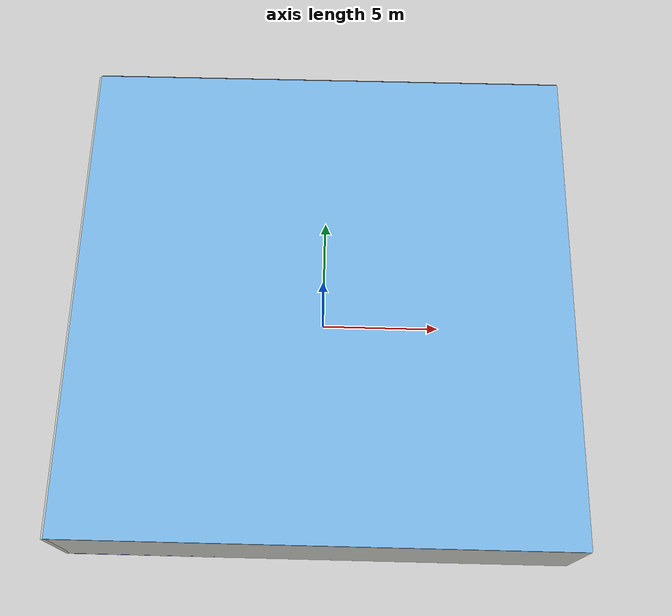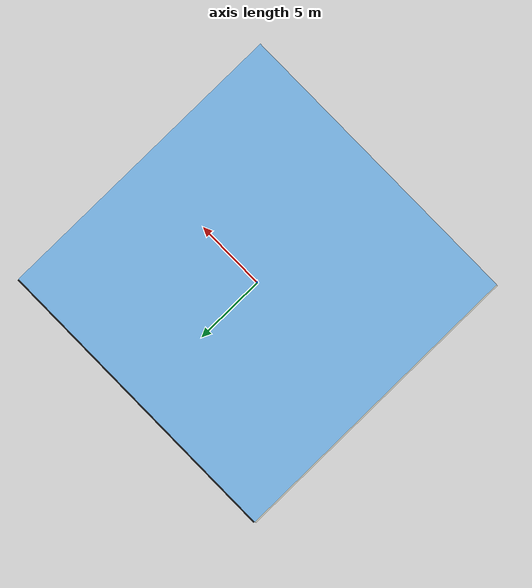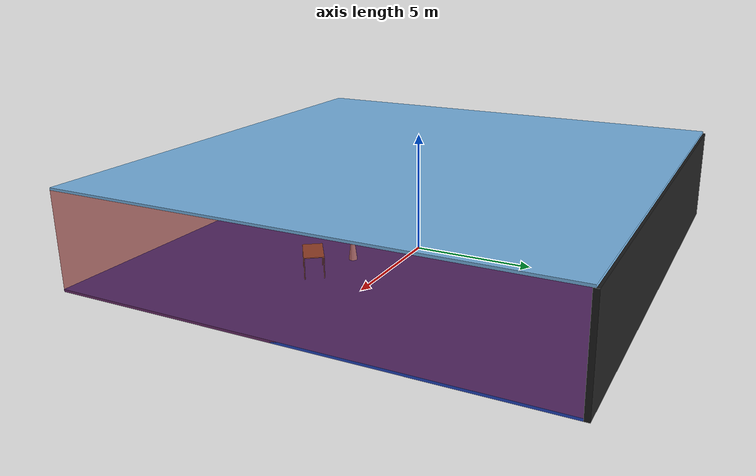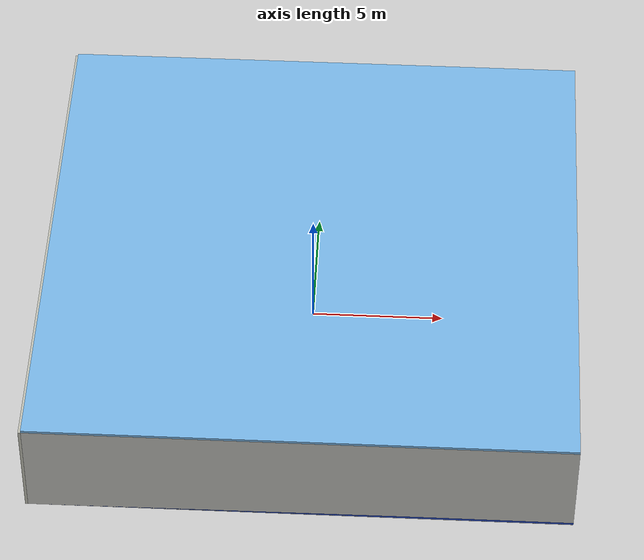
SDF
<sdf version="1.4">
 <world name="default">
  <physics type="ode">
   <max_step_size>0.001</max_step_size>
   <real_time_factor>1</real_time_factor>
   <real_time_update_rate>1000</real_time_update_rate>
   <gravity>0 0 -9.8</gravity>
  </physics>
  <scene><ambient>0.4 0.4 0.4 1</ambient><background>0.7 0.7 0.7 1</background><shadows>1</shadows></scene>
  <model name="Surrounding">
   <static>1</static>
   <link name="Ceiling">
    <collision name="Ceiling_Collision"><geometry><box><size>20 20 0.1</size></box></geometry></collision>
    <visual name="Ceiling_Visual">
     <geometry><box><size>20 20 0.1</size></box></geometry>
     <material>
      <script><uri>file://media/materials/scripts/gazebo.material</uri><name>Gazebo/SkyBlue</name></script>
     </material>
    </visual>
    <pose>0 0 4.05 0 0 0</pose>
   </link>
   <link name="Wall_South">
    <collision name="Wall_South_Collision">
     <geometry><box><size>20 0 4</size></box></geometry>
     <pose>0 0 2 0 -0 0</pose>
    </collision>
    <visual name="Wall_South_Visual">
     <pose>0 0 2 0 -0 0</pose>
     <geometry><box><size>20 0 4</size></box></geometry>
     <material>
      <script><uri>file://media/materials/scripts/gazebo.material</uri><name>Gazebo/CeilingTiled</name></script>
     </material>
    </visual>
    <velocity_decay><linear>0</linear><angular>0</angular></velocity_decay>
    <pose>0 -10 0 0 -0 0</pose>
   </link>
   <link name="Wall_East">
    <collision name="Wall_21_Collision">
     <geometry><box><size>20 0 4</size></box></geometry>
     <pose>0 0 2 0 -0 0</pose>
    </collision>
    <visual name="Wall_21_Visual">
     <pose>0 0 2 0 -0 0</pose>
     <geometry><box><size>20 0 4</size></box></geometry>
     <material>
      <script><uri>file://media/materials/scripts/gazebo.material</uri><name>Gazebo/RedTransparent</name></script>
     </material>
    </visual>
    <velocity_decay><linear>0</linear><angular>0</angular></velocity_decay>
    <pose>10 0 0 0 -0 1.5708</pose>
   </link>
   <link name="Wall_North">
    <collision name="Wall_22_Collision">
     <geometry><box><size>20 0.2 4</size></box></geometry>
     <pose>0 0 2 0 -0 0</pose>
    </collision>
    <visual name="Wall_22_Visual">
     <pose>0 0 2 0 -0 0</pose>
     <geometry><box><size>20 0.2 4</size></box></geometry>
     <material>
      <script><uri>file://media/materials/scripts/gazebo.material</uri><name>Gazebo/Black</name></script>
     </material>
    </visual>
    <velocity_decay><linear>0</linear><angular>0</angular></velocity_decay>
    <pose>0 10 0 0 -0 0</pose>
   </link>
   <link name="Wall_West">
    <collision name="Wall_23_Collision">
     <geometry><box><size>20 0.2 4</size></box></geometry>
     <pose>0 0 2 0 -0 0</pose>
    </collision>
    <visual name="Wall_23_Visual">
     <pose>0 0 2 0 -0 0</pose>
     <geometry><box><size>20 0.2 4</size></box></geometry>
     <material>
      <script><uri>file://media/materials/scripts/gazebo.material</uri><name>Gazebo/PaintedWall</name></script>
     </material>
    </visual>
    <velocity_decay><linear>0</linear><angular>0</angular></velocity_decay>
    <pose>-10 0 0 0 0 -1.5708</pose>
   </link>
   <link name="Ground_link">
    <collision name="collision">
     <pose>0 0 .05 0 -0 0</pose>
     <geometry><box><size>20 20 0.1</size></box></geometry>
    </collision>
    <visual name="visual">
     <pose>0 0 .05 0 -0 0</pose>
     <geometry><box><size>20 20 0.1</size></box></geometry>
     <material>
      <script><uri>file://media/materials/scripts/gazebo.material</uri><name>Gazebo/Blue</name></script>
     </material>
    </visual>
   </link>
   <static>1</static>
  </model>
  <spherical_coordinates>
   <surface_model>EARTH_WGS84</surface_model>
   <latitude_deg>0</latitude_deg>
   <longitude_deg>0</longitude_deg>
   <elevation>0</elevation>
   <heading_deg>0</heading_deg>
  </spherical_coordinates>
  <light name="lightball_0" type="diffuse">
   <diffuse>0.8 0.8 0.8 1</diffuse>
   <specular>0.2 0.2 0.2 1</specular>
   <attenuation>
    <range>100</range>
    <constant>0.7</constant>
    <linear>0.01</linear>
    <quadratic>0.001</quadratic>
   </attenuation>
   <direction>-0.5 0.1 -0.9</direction>
   <pose>-3.74419947266 -8.90151250304 2.24585482152 0 0 0</pose>
  </light>
  <include>
   <uri>model://robocup_3Dsim_goal</uri>
   <pose>-4.20291229325 -6.93231359996 0 0 0 2.99379164017</pose>
  </include>
  <include>
   <uri>model://construction_cone</uri>
   <pose>-5.51289587624 -5.3625239728 0 0 0 1.26291610711</pose>
  </include>
  <include><uri>model://table</uri><pose>-0.905882484133 8.58637507611 0 0 0 1.57254811719</pose></include>
  <include>
   <uri>model://construction_cone</uri>
   <pose>2.56388458658 -1.77823598657 0 0 0 0.821741550588</pose>
  </include>
  <include><uri>model://table</uri><pose>4.45657896773 -2.46061007018 0 0 0 0.62163921192</pose></include>
 </world>
</sdf>

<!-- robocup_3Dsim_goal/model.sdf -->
<sdf version="1.5">
  <model name="robocup_3d_goal">
    <static>true</static>
    <link name="left_post">
      <pose>0 1.05 0.45 0 0 0</pose>
      <collision name="collision">
        <geometry>
          <cylinder>
            <radius>0.05</radius>
            <length>0.9</length>
          </cylinder>
        </geometry>
      </collision>
      <visual name="visual">
        <geometry>
          <cylinder>
            <radius>0.05</radius>
            <length>0.9</length>
          </cylinder>
        </geometry>
        <material>
          <script>
            <uri>file://media/materials/scripts/gazebo.material</uri>
            <name>Gazebo/ZincYellow</name>
          </script>
        </material>
      </visual>
    </link>
    <link name="left_support_horiz_lower">
      <pose>0.30 1.05 0.01 0 0 0</pose>
      <collision name="collision">
        <geometry>
          <box>
            <size>0.50 0.02 0.02</size>
          </box>
        </geometry>
      </collision>
      <visual name="visual">
        <geometry>
          <box>
            <size>0.50 0.02 0.02</size>
          </box>
        </geometry>
        <material>
          <script>
            <uri>file://media/materials/scripts/gazebo.material</uri>
            <name>Gazebo/White</name>
          </script>
        </material>
      </visual>
    </link>
    <link name="left_support_horiz_upper">
      <pose>0.30 1.05 0.79 0 0 0</pose>
      <collision name="collision">
        <geometry>
          <box>
            <size>0.50 0.02 0.02</size>
          </box>
        </geometry>
      </collision>
      <visual name="visual">
        <geometry>
          <box>
            <size>0.50 0.02 0.02</size>
          </box>
        </geometry>
        <material>
          <script>
            <uri>file://media/materials/scripts/gazebo.material</uri>
            <name>Gazebo/White</name>
          </script>
        </material>
      </visual>
    </link>
    <link name="left_support_vertical">
      <pose>0.56 1.05 0.4 0 1.5708 0</pose>
      <collision name="collision">
        <geometry>
          <box>
            <size>0.80 0.02 0.02</size>
          </box>
        </geometry>
      </collision>
      <visual name="visual">
        <geometry>
          <box>
            <size>0.80 0.02 0.02</size>
          </box>
        </geometry>
        <material>
          <script>
            <uri>file://media/materials/scripts/gazebo.material</uri>
            <name>Gazebo/White</name>
          </script>
        </material>
      </visual>
    </link>
    <link name="right_support_horiz_lower">
      <pose>0.30 -1.05 0.01 0 0 0</pose>
      <collision name="collision">
        <geometry>
          <box>
            <size>0.50 0.02 0.02</size>
          </box>
        </geometry>
      </collision>
      <visual name="visual">
        <geometry>
          <box>
            <size>0.50 0.02 0.02</size>
          </box>
        </geometry>
        <material>
          <script>
            <uri>file://media/materials/scripts/gazebo.material</uri>
            <name>Gazebo/White</name>
          </script>
        </material>
      </visual>
    </link>
    <link name="right_support_horiz_upper">
      <pose>0.30 -1.05 0.79 0 0 0</pose>
      <collision name="collision">
        <geometry>
          <box>
            <size>0.50 0.02 0.02</size>
          </box>
        </geometry>
      </collision>
      <visual name="visual">
        <geometry>
          <box>
            <size>0.50 0.02 0.02</size>
          </box>
        </geometry>
        <material>
          <script>
            <uri>file://media/materials/scripts/gazebo.material</uri>
            <name>Gazebo/White</name>
          </script>
        </material>
      </visual>
    </link>
    <link name="right_support_vertical">
      <pose>0.56 -1.05 0.4 0 1.5708 0</pose>
      <collision name="collision">
        <geometry>
          <box>
            <size>0.80 0.02 0.02</size>
          </box>
        </geometry>
      </collision>
      <visual name="visual">
        <geometry>
          <box>
            <size>0.80 0.02 0.02</size>
          </box>
        </geometry>
        <material>
          <script>
            <uri>file://media/materials/scripts/gazebo.material</uri>
            <name>Gazebo/White</name>
          </script>
        </material>
      </visual>
    </link>
    <link name="center_support_horiz_lower">
      <pose>0.56 0 0.01 0 1.5708 0</pose>
      <collision name="collision">
        <geometry>
          <box>
            <size>0.02 2.08 0.02</size>
          </box>
        </geometry>
      </collision>
      <visual name="visual">
        <geometry>
          <box>
            <size>0.02 2.08 0.02</size>
          </box>
        </geometry>
        <material>
          <script>
            <uri>file://media/materials/scripts/gazebo.material</uri>
            <name>Gazebo/White</name>
          </script>
        </material>
      </visual>
    </link>
    <link name="center_support_horiz_upper">
      <pose>0.56 0 0.79 0 1.5708 0</pose>
      <collision name="collision">
        <geometry>
          <box>
            <size>0.02 2.08 0.02</size>
          </box>
        </geometry>
      </collision>
      <visual name="visual">
        <geometry>
          <box>
            <size>0.02 2.08 0.02</size>
          </box>
        </geometry>
        <material>
          <script>
            <uri>file://media/materials/scripts/gazebo.material</uri>
            <name>Gazebo/White</name>
          </script>
        </material>
      </visual>
    </link>
    <link name="right_post">
      <pose>0 -1.05 0.45 0 0 0</pose>
      <collision name="collision">
        <geometry>
          <cylinder>
            <radius>0.05</radius>
            <length>0.9</length>
          </cylinder>
        </geometry>
      </collision>
      <visual name="visual">
        <geometry>
          <cylinder>
            <radius>0.05</radius>
            <length>0.9</length>
          </cylinder>
        </geometry>
        <material>
          <script>
            <uri>file://media/materials/scripts/gazebo.material</uri>
            <name>Gazebo/ZincYellow</name>
          </script>
        </material>
      </visual>
    </link>
    <link name="crossbar">
      <pose>0 0 0.85 1.57 1.57 0</pose>
      <collision name="collision">
        <geometry>
          <cylinder>
            <radius>0.05</radius>
            <length>2.0</length>
          </cylinder>
        </geometry>
      </collision>
      <visual name="visual">
        <geometry>
          <cylinder>
            <radius>0.05</radius>
            <length>2.0</length>
          </cylinder>
        </geometry>
        <material>
          <script>
            <uri>file://media/materials/scripts/gazebo.material</uri>
            <name>Gazebo/ZincYellow</name>
          </script>
        </material>
      </visual>
    </link>
    <link name="center_net">
      <pose>0.56 0 0.40 0 0 0</pose>
      <collision name="collision">
        <geometry>
          <box>
            <size>0.01 2.1 0.80</size>
          </box>
        </geometry>
      </collision>
      <visual name="visual">
        <geometry>
          <box>
            <size>0.01 2.1 0.80</size>
          </box>
        </geometry>
        <material>
          <script>
            <uri>model://../model_source/models/robocup09_spl_field/materials/scripts/</uri>
            <uri>model://../model_source/models/robocup09_spl_field/materials/textures/</uri>
            <name>RoboCup/Net</name>
          </script>
        </material>
      </visual>
    </link>
    <link name="left_net">
      <pose>0.30 1.05 0.40 0 0 0</pose>
      <collision name="collision">
        <geometry>
          <box>
            <size>0.50 0.01 0.76</size>
          </box>
        </geometry>
      </collision>
      <visual name="visual">
        <geometry>
          <box>
            <size>0.50 0.01 0.76</size>
          </box>
        </geometry>
        <material>
          <script>
            <uri>model://../model_source/models/robocup09_spl_field/materials/scripts/</uri>
            <uri>model://../model_source/models/robocup09_spl_field/materials/textures/</uri>
            <name>RoboCup/Net</name>
          </script>
        </material>
      </visual>
    </link>
    <link name="right_net">
      <pose>0.30 -1.05 0.40 0 0 0</pose>
      <collision name="collision">
        <geometry>
          <box>
            <size>0.50 0.01 0.76</size>
          </box>
        </geometry>
      </collision>
      <visual name="visual">
        <geometry>
          <box>
            <size>0.50 0.01 0.76</size>
          </box>
        </geometry>
        <material>
          <script>
            <uri>model://../model_source/models/robocup09_spl_field/materials/scripts/</uri>
            <uri>model://../model_source/models/robocup09_spl_field/materials/textures/</uri>
            <name>RoboCup/Net</name>
          </script>
        </material>
      </visual>
    </link>
  </model>
</sdf>

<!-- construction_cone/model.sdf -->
<sdf version="1.5">
  <model name="Construction Cone">
    <link name="link">
      <collision name="collision">
        <geometry>
          <mesh>
            <scale>10 10 10</scale>
            <uri>file://isr-testbed/construction_cone/meshes/construction_cone.dae</uri>
          </mesh>
        </geometry>
      </collision>
      <visual name="visual">
        <geometry>
          <mesh>
            <scale>10 10 10</scale>
            <uri>file://isr-testbed/construction_cone/meshes/construction_cone.dae</uri>
          </mesh>
        </geometry>
      </visual>
    </link>
  </model>
</sdf>

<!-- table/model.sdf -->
<sdf version="1.5">
  <model name="table">
    <static>true</static>
    <link name="link">
      <collision name="surface">
        <pose>0 0 1.0 0 0 0</pose>
        <geometry>
          <box>
            <size>1.5 0.8 0.03</size>
          </box>
        </geometry>
        <surface>
          <friction>
            <ode>
              <mu>0.6</mu>
              <mu2>0.6</mu2>
            </ode>
          </friction>
        </surface>
      </collision>
      <visual name="visual1">
        <pose>0 0 1.0 0 0 0</pose>
        <geometry>
          <box>
            <size>1.5 0.8 0.03</size>
          </box>
        </geometry>
        <material>
          <script>
            <uri>model://media/materials/scripts/gazebo.material</uri>
            <name>Gazebo/Wood</name>
          </script>
        </material>
      </visual>
      <collision name="front_left_leg">
        <pose>0.68 0.38 0.5 0 0 0</pose>
        <geometry>
          <cylinder>
            <radius>0.02</radius>
            <length>1.0</length>
          </cylinder>
        </geometry>
      </collision>
      <visual name="front_left_leg">
        <pose>0.68 0.38 0.5 0 0 0</pose>
        <geometry>
          <cylinder>
            <radius>0.02</radius>
            <length>1.0</length>
          </cylinder>
        </geometry>
        <material>
          <script>
            <uri>model://media/materials/scripts/gazebo.material</uri>
            <name>Gazebo/Grey</name>
          </script>
        </material>
      </visual>
      <collision name="front_right_leg">
        <pose>0.68 -0.38 0.5 0 0 0</pose>
        <geometry>
          <cylinder>
            <radius>0.02</radius>
            <length>1.0</length>
          </cylinder>
        </geometry>
      </collision>
      <visual name="front_right_leg">
        <pose>0.68 -0.38 0.5 0 0 0</pose>
        <geometry>
          <cylinder>
            <radius>0.02</radius>
            <length>1.0</length>
          </cylinder>
        </geometry>
        <material>
          <script>
            <uri>model://media/materials/scripts/gazebo.material</uri>
            <name>Gazebo/Grey</name>
          </script>
        </material>
      </visual>
      <collision name="back_right_leg">
        <pose>-0.68 -0.38 0.5 0 0 0</pose>
        <geometry>
          <cylinder>
            <radius>0.02</radius>
            <length>1.0</length>
          </cylinder>
        </geometry>
      </collision>
      <visual name="back_right_leg">
        <pose>-0.68 -0.38 0.5 0 0 0</pose>
        <geometry>
          <cylinder>
            <radius>0.02</radius>
            <length>1.0</length>
          </cylinder>
        </geometry>
        <material>
          <script>
            <uri>model://media/materials/scripts/gazebo.material</uri>
            <name>Gazebo/Grey</name>
          </script>
        </material>
      </visual>
      <collision name="back_left_leg">
        <pose>-0.68 0.38 0.5 0 0 0</pose>
        <geometry>
          <cylinder>
            <radius>0.02</radius>
            <length>1.0</length>
          </cylinder>
        </geometry>
      </collision>
      <visual name="back_left_leg">
        <pose>-0.68 0.38 0.5 0 0 0</pose>
        <geometry>
          <cylinder>
            <radius>0.02</radius>
            <length>1.0</length>
          </cylinder>
        </geometry>
        <material>
          <script>
            <uri>model://media/materials/scripts/gazebo.material</uri>
            <name>Gazebo/Grey</name>
          </script>
        </material>
      </visual>
    </link>
  </model>
</sdf>
